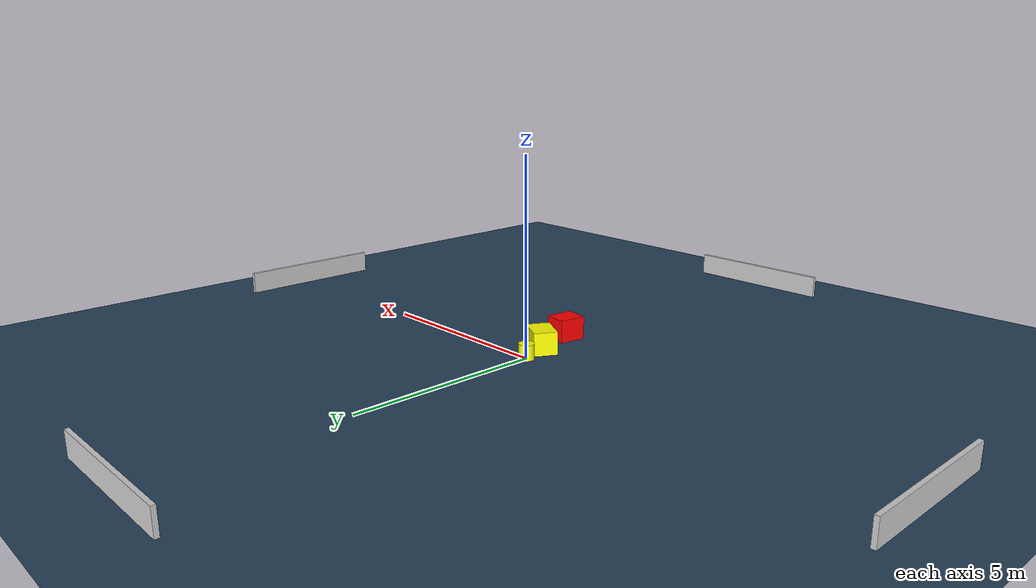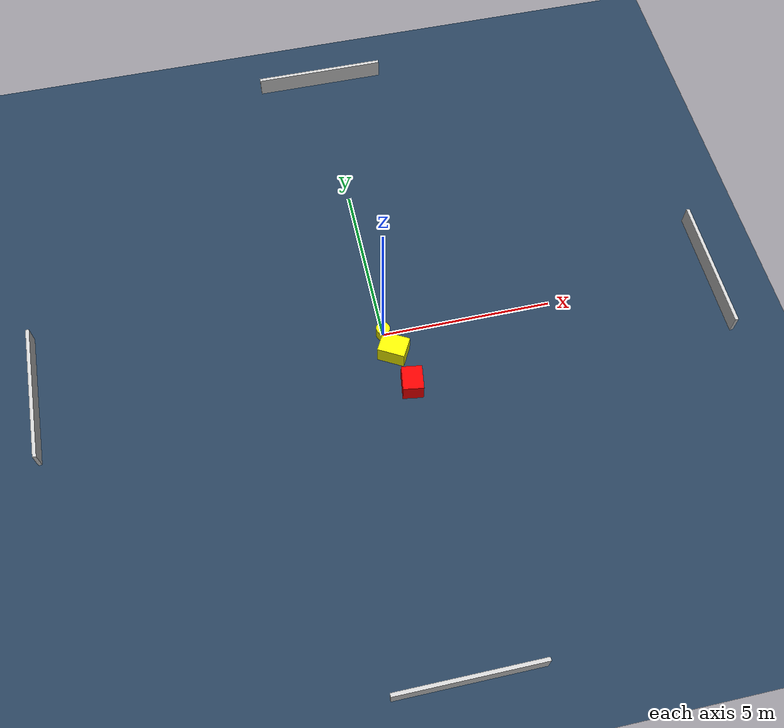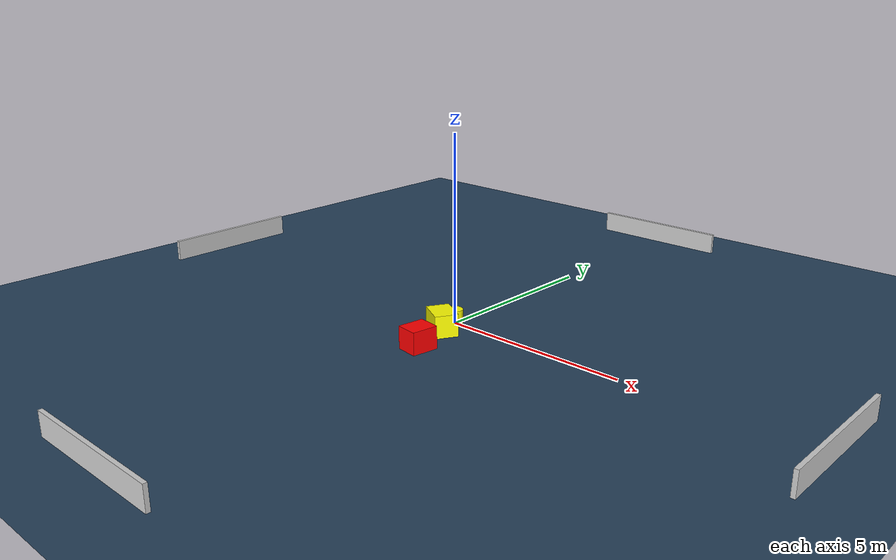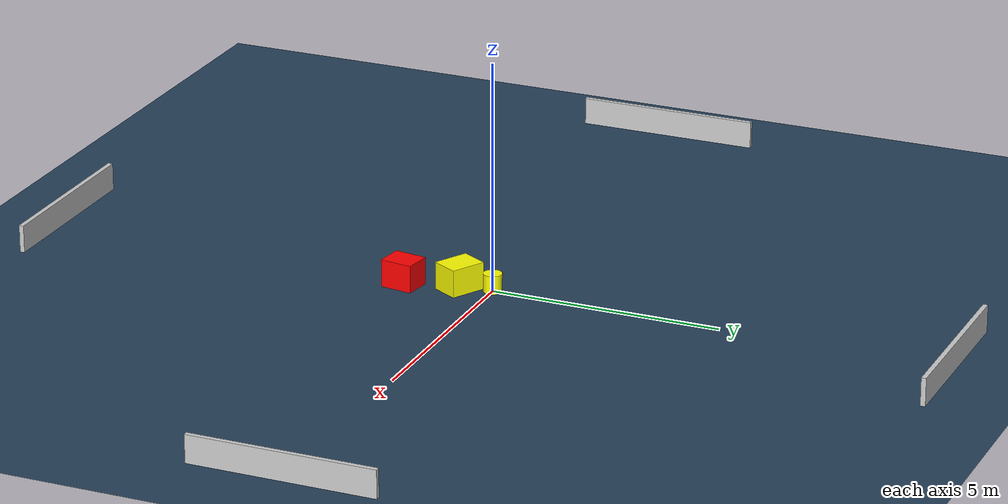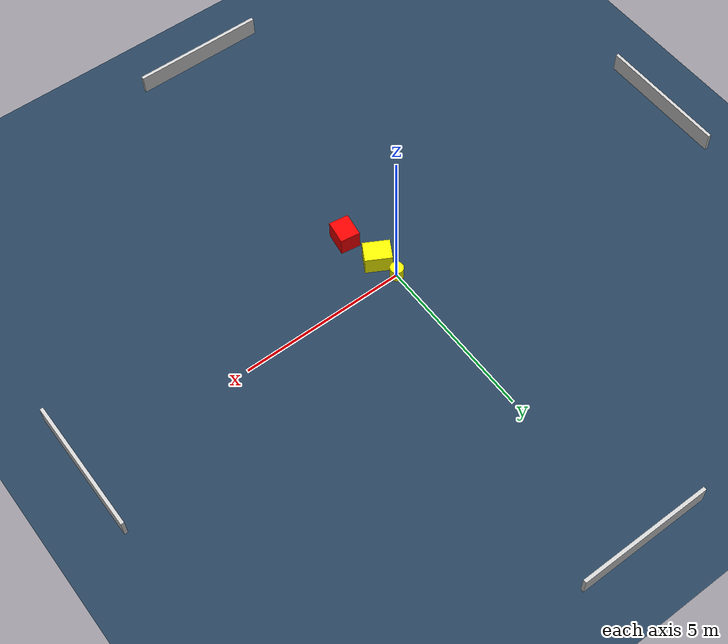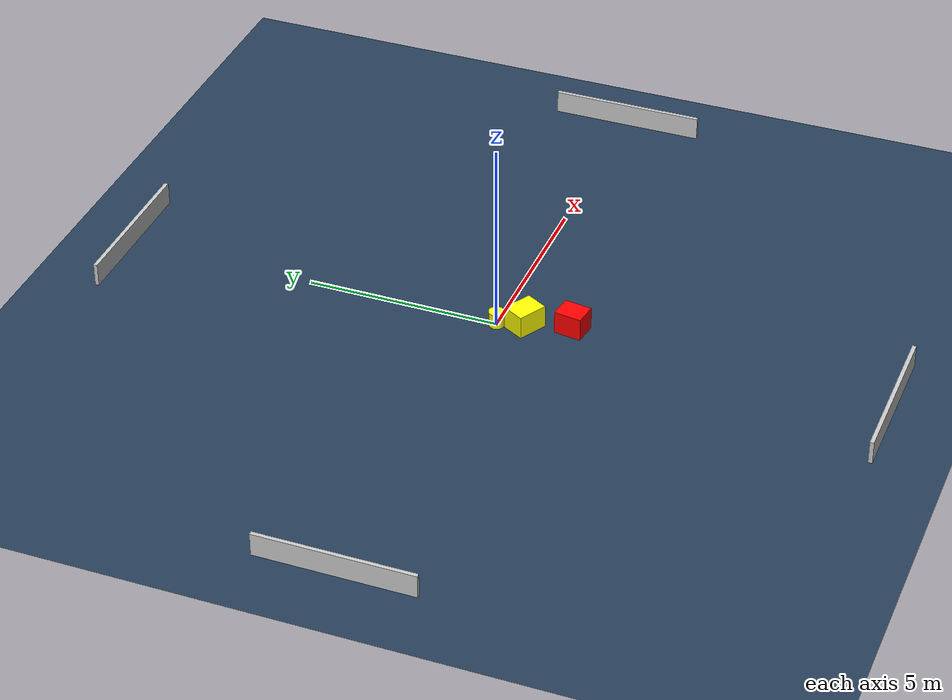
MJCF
<?xml version="1.0" ?>
<mujoco model="generated_environment">
  <option timestep="0.01" integrator="RK4" cone="elliptic"/>
  <default>
    <geom density="1"/>
  </default>
  <asset>
    <texture builtin="gradient" height="3072" name="skybox" rgb1="0.3 0.5 0.7" rgb2="0 0 0" type="skybox" width="512"/>
    <texture builtin="checker" height="300" name="groundplane" rgb1="0.2 0.3 0.4" rgb2="0.1 0.2 0.3" type="2d" width="300"/>
    <material name="groundplane" reflectance="0.2" texrepeat="5 5" texture="groundplane"/>
  </asset>
  <worldbody>
    <light dir="0 0 -1" directional="true" pos="0 0 1.5"/>
    <geom condim="3" friction="0.5 0.005 0.001" material="groundplane" name="floor" pos="0 0 0" size="0 0 0.05" type="plane"/>
    <body name="walls">
      <geom name="wall_1" condim="4" pos="-10.0 0.0 0.3" rgba="0.800000011920929 0.800000011920929 0.800000011920929 1.0" size="0.05 2.0 0.3" type="box"/>
      <geom name="wall_2" condim="4" pos="10.0 0.0 0.3" rgba="0.800000011920929 0.800000011920929 0.800000011920929 1.0" size="0.05 2.0 0.3" type="box"/>
      <geom name="wall_3" condim="4" pos="0.0 -10.0 0.3" rgba="0.800000011920929 0.800000011920929 0.800000011920929 1.0" size="2.0 0.05 0.3" type="box"/>
      <geom name="wall_4" condim="4" pos="0.0 10.0 0.3" rgba="0.800000011920929 0.800000011920929 0.800000011920929 1.0" size="2.0 0.05 0.3" type="box"/>
    </body>
    <body name="robot">
      <joint name="joint_x" type="slide" pos="0 0 0" axis="1 0 0"/>
      <joint name="joint_y" type="slide" pos="0 0 0" axis="0 1 0"/>
      <geom name="robot" type="cylinder" pos="0.0 0.0 0.2" size="0.2 0.2 0.0" mass="5.0" friction="1.0 0.005 0.0001" condim="4" rgba="1.0 1.0 0.0 1.0"/>
    </body>
    <body name="obstacle_1_movable">
      <geom name="obstacle_1_movable" condim="4" pos="0.16304433760120057 -0.6790128610414776 0.3" euler="0 0 240.87690249912964" friction="0.0 0.005 0.001" rgba="1.0 1.0 0.0 1.0" size="0.30746417762130673 0.3954550862110535 0.3" type="box" mass="0.1"/>
      <joint type="free"/>
    </body>
    <body name="obstacle_2_static">
      <geom name="obstacle_2_static" condim="4" pos="0.4458306302521215 -1.8311031910377789 0.3" euler="0 0 81.83689372511407" friction="0.0 0.005 0.001" rgba="1.0 0.0 0.0 1.0" size="0.35528783607740577 0.295419255923653 0.3" type="box"/>
    </body>
  </worldbody>
  <actuator>
    <motor name="actuator_x" joint="joint_x" gear="1" ctrlrange="-1 1"/>
    <motor name="actuator_y" joint="joint_y" gear="1" ctrlrange="-1 1"/>
  </actuator>
</mujoco>
